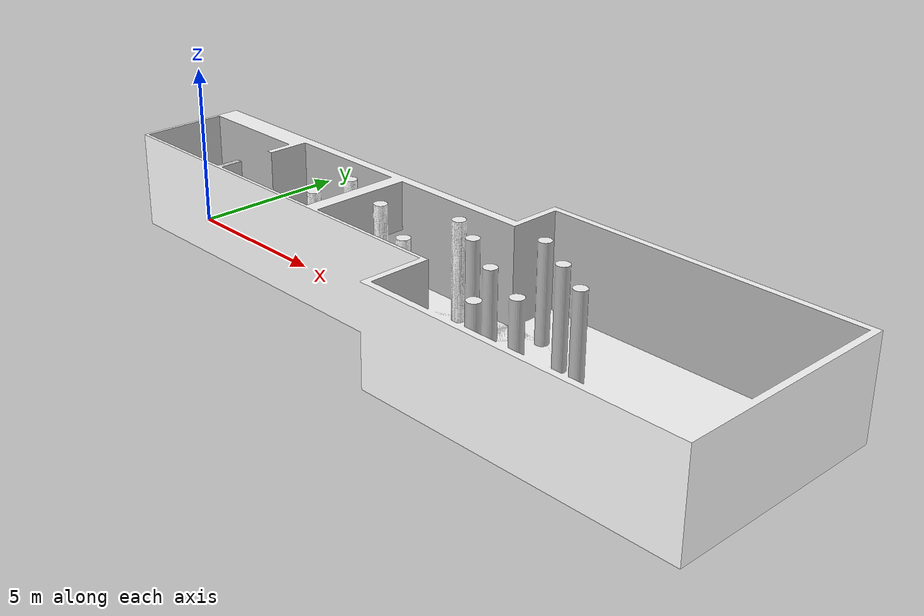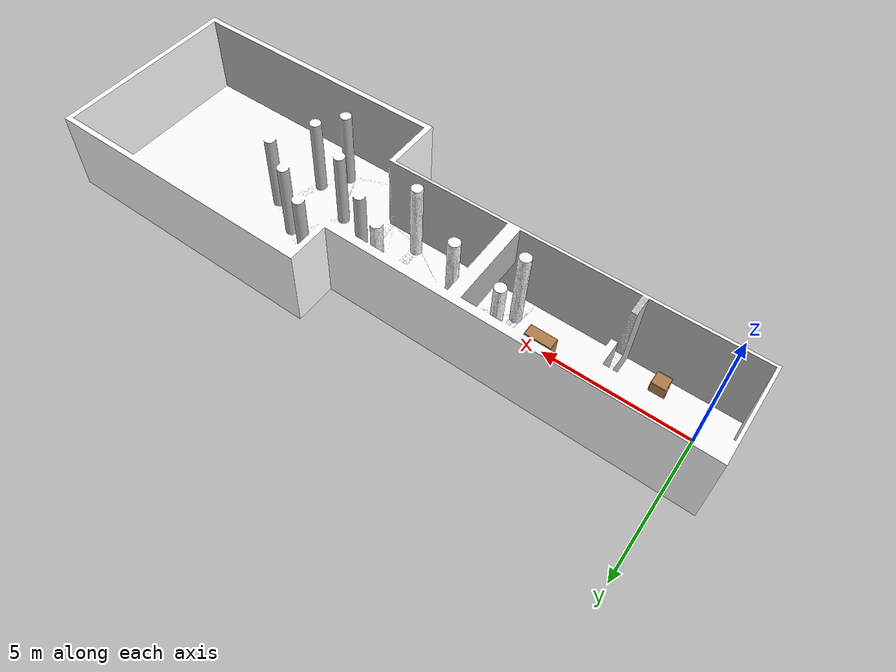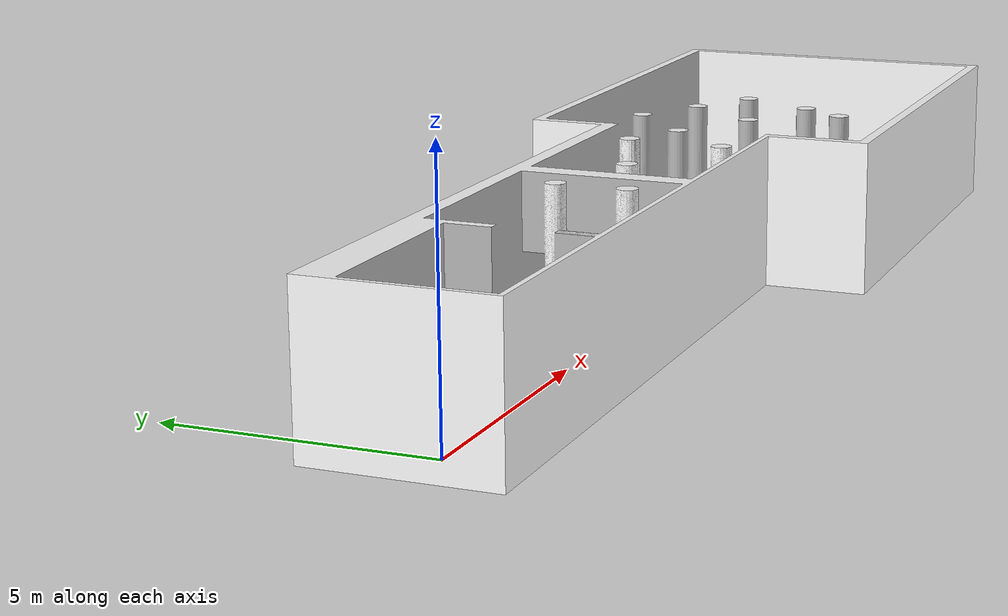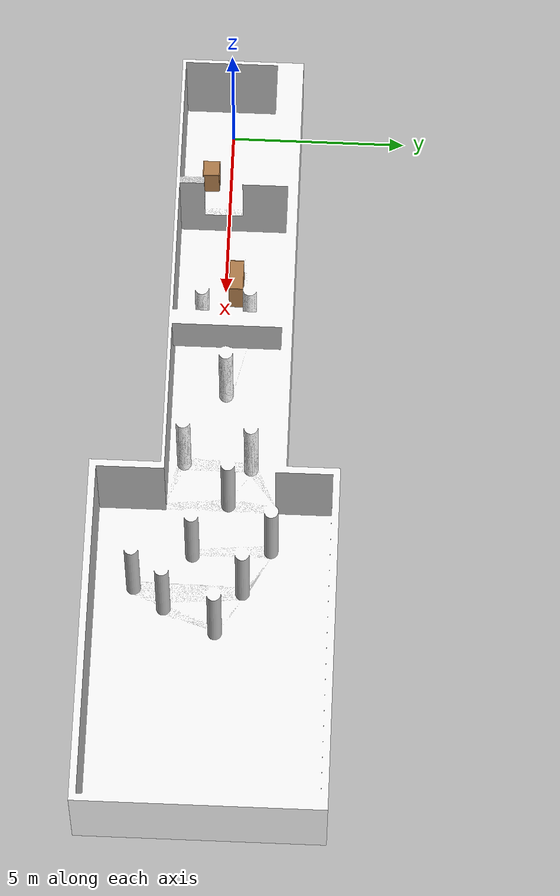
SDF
<sdf version="1.4">
 <world name="world">
  <model name="ground_plane">
   <static>1</static>
   <link name="link">
    <collision name="collision">
     <geometry><plane><normal>0 0 1</normal><size>100 100</size></plane></geometry>
     <surface><friction><ode><mu>100</mu><mu2>50</mu2></ode></friction></surface>
    </collision>
    <velocity_decay><linear>0</linear><angular>0</angular></velocity_decay>
   </link>
  </model>
  <model name="collision4">
   <static>1</static>
   <link name="body">
    <visual name="visual">
     <pose>-1 -1.5 -0.01 0 -0 0</pose>
     <geometry><mesh><uri>model://collision4/collision4.dae</uri></mesh></geometry>
    </visual>
    <collision name="collision">
     <pose>-1 -1.5 -0.01 0 -0 0</pose>
     <geometry><mesh><uri>model://collision4/collision4.dae</uri></mesh></geometry>
    </collision>
    <velocity_decay><linear>0</linear><angular>0</angular></velocity_decay>
   </link>
  </model>
  <light name="sun1" type="directional">
   <pose>1 0 3 0 -0 0</pose>
   <diffuse>0.8 0.8 0.8 1</diffuse>
   <specular>0.2 0.2 0.2 1</specular>
   <attenuation>
    <range>20</range>
    <constant>0.9</constant>
    <linear>0.01</linear>
    <quadratic>0.001</quadratic>
   </attenuation>
   <direction>-0 0 -1</direction>
  </light>
  <light name="sun2" type="point">
   <pose>0 0 5 0 -0 0</pose>
   <diffuse>0.8 0.8 0.8 1</diffuse>
   <specular>0.2 0.2 0.2 1</specular>
   <attenuation>
    <range>10</range>
    <constant>0.9</constant>
    <linear>0.01</linear>
    <quadratic>0.001</quadratic>
   </attenuation>
   <direction>-0 0 -1</direction>
  </light>
  <physics type="ode">
   <max_step_size>0.001</max_step_size>
   <real_time_factor>1</real_time_factor>
   <real_time_update_rate>1000</real_time_update_rate>
   <gravity>0 0 -9.8</gravity>
  </physics>
  <scene><ambient>0.4 0.4 0.4 1</ambient><background>0.7 0.7 0.7 1</background><shadows>1</shadows></scene>
  <spherical_coordinates>
   <surface_model>EARTH_WGS84</surface_model>
   <latitude_deg>0</latitude_deg>
   <longitude_deg>0</longitude_deg>
   <elevation>0</elevation>
   <heading_deg>0</heading_deg>
  </spherical_coordinates>
  <model name="cabinet">
   <static>1</static>
   <link name="cabinet_bottom_plate">
    <inertial>
     <pose>0 0 -1 0 -0 0</pose>
     <inertia><ixx>2.05</ixx><ixy>0</ixy><ixz>0</ixz><iyy>2.05</iyy><iyz>0</iyz><izz>2.05</izz></inertia>
     <mass>25</mass>
    </inertial>
    <collision name="cabinet_bottom_plate_geom">
     <pose>0 0 0.01 0 -0 0</pose>
     <geometry><box><size>0.45 0.45 0.02</size></box></geometry>
    </collision>
    <visual name="cabinet_bottom_plate_geom_visual">
     <pose>0 0 0.01 0 -0 0</pose>
     <geometry><box><size>0.45 0.45 0.02</size></box></geometry>
     <material>
      <script><uri>file://media/materials/scripts/gazebo.material</uri><name>Gazebo/Wood</name></script>
     </material>
    </visual>
    <collision name="cabinet_bottom_plate_geom_cabinet_back_plate">
     <pose>0.235 0 0.51 0 -0 0</pose>
     <geometry><box><size>0.02 0.45 1.02</size></box></geometry>
    </collision>
    <visual name="cabinet_bottom_plate_geom_cabinet_back_plate_visual">
     <pose>0.235 0 0.51 0 -0 0</pose>
     <geometry><box><size>0.02 0.45 1.02</size></box></geometry>
     <material>
      <script><uri>file://media/materials/scripts/gazebo.material</uri><name>Gazebo/Wood</name></script>
     </material>
    </visual>
    <collision name="cabinet_bottom_plate_geom_cabinet_left_plate">
     <pose>0 0.235 0.51 0 -0 0</pose>
     <geometry><box><size>0.45 0.02 1.02</size></box></geometry>
    </collision>
    <visual name="cabinet_bottom_plate_geom_cabinet_left_plate_visual">
     <pose>0 0.235 0.51 0 -0 0</pose>
     <geometry><box><size>0.45 0.02 1.02</size></box></geometry>
     <material>
      <script><uri>file://media/materials/scripts/gazebo.material</uri><name>Gazebo/Wood</name></script>
     </material>
    </visual>
    <collision name="cabinet_bottom_plate_geom_cabinet_middle_plate">
     <pose>0 0 0.51 0 -0 0</pose>
     <geometry><box><size>0.45 0.45 0.02</size></box></geometry>
    </collision>
    <visual name="cabinet_bottom_plate_geom_cabinet_middle_plate_visual">
     <pose>0 0 0.51 0 -0 0</pose>
     <geometry><box><size>0.45 0.45 0.02</size></box></geometry>
     <material>
      <script><uri>file://media/materials/scripts/gazebo.material</uri><name>Gazebo/Wood</name></script>
     </material>
    </visual>
    <collision name="cabinet_bottom_plate_geom_cabinet_right_plate">
     <pose>0 -0.235 0.51 0 -0 0</pose>
     <geometry><box><size>0.45 0.02 1.02</size></box></geometry>
    </collision>
    <visual name="cabinet_bottom_plate_geom_cabinet_right_plate_visual">
     <pose>0 -0.235 0.51 0 -0 0</pose>
     <geometry><box><size>0.45 0.02 1.02</size></box></geometry>
     <material>
      <script><uri>file://media/materials/scripts/gazebo.material</uri><name>Gazebo/Wood</name></script>
     </material>
    </visual>
    <collision name="cabinet_bottom_plate_geom_cabinet_top_plate">
     <pose>0 0 1.01 0 -0 0</pose>
     <geometry><box><size>0.45 0.45 0.02</size></box></geometry>
    </collision>
    <visual name="cabinet_bottom_plate_geom_cabinet_top_plate_visual">
     <pose>0 0 1.01 0 -0 0</pose>
     <geometry><box><size>0.45 0.45 0.02</size></box></geometry>
     <material>
      <script><uri>file://media/materials/scripts/gazebo.material</uri><name>Gazebo/Wood</name></script>
     </material>
    </visual>
    <velocity_decay><linear>0</linear><angular>0</angular></velocity_decay>
   </link>
   <pose>1.49811 -0.578333 0 0 -0 0</pose>
  </model>
  <model name="bookshelf">
   <static>1</static>
   <link name="link">
    <inertial><mass>1</mass></inertial>
    <collision name="back">
     <pose>0 0.005 0.6 0 -0 0</pose>
     <geometry><box><size>0.9 0.01 1.2</size></box></geometry>
    </collision>
    <visual name="visual1">
     <pose>0 0.005 0.6 0 -0 0</pose>
     <geometry><box><size>0.9 0.01 1.2</size></box></geometry>
     <material>
      <script><uri>file://media/materials/scripts/gazebo.material</uri><name>Gazebo/Wood</name></script>
     </material>
    </visual>
    <collision name="left_side">
     <pose>0.45 -0.195 0.6 0 -0 0</pose>
     <geometry><box><size>0.02 0.4 1.2</size></box></geometry>
    </collision>
    <visual name="visual2">
     <pose>0.45 -0.195 0.6 0 -0 0</pose>
     <geometry><box><size>0.02 0.4 1.2</size></box></geometry>
     <material>
      <script><uri>file://media/materials/scripts/gazebo.material</uri><name>Gazebo/Wood</name></script>
     </material>
    </visual>
    <collision name="right_side">
     <pose>-0.45 -0.195 0.6 0 -0 0</pose>
     <geometry><box><size>0.02 0.4 1.2</size></box></geometry>
    </collision>
    <visual name="visual3">
     <pose>-0.45 -0.195 0.6 0 -0 0</pose>
     <geometry><box><size>0.02 0.4 1.2</size></box></geometry>
     <material>
      <script><uri>file://media/materials/scripts/gazebo.material</uri><name>Gazebo/Wood</name></script>
     </material>
    </visual>
    <collision name="bottom">
     <pose>0 -0.195 0.03 0 -0 0</pose>
     <geometry><box><size>0.88 0.4 0.06</size></box></geometry>
    </collision>
    <visual name="visual4">
     <pose>0 -0.195 0.03 0 -0 0</pose>
     <geometry><box><size>0.88 0.4 0.06</size></box></geometry>
     <material>
      <script><uri>file://media/materials/scripts/gazebo.material</uri><name>Gazebo/Wood</name></script>
     </material>
    </visual>
    <collision name="top">
     <pose>0 -0.195 1.19 0 -0 0</pose>
     <geometry><box><size>0.88 0.4 0.02</size></box></geometry>
    </collision>
    <visual name="visual5">
     <pose>0 -0.195 1.19 0 -0 0</pose>
     <geometry><box><size>0.88 0.4 0.02</size></box></geometry>
     <material>
      <script><uri>file://media/materials/scripts/gazebo.material</uri><name>Gazebo/Wood</name></script>
     </material>
    </visual>
    <collision name="low_shelf">
     <pose>0 -0.195 0.43 0 -0 0</pose>
     <geometry><box><size>0.88 0.4 0.02</size></box></geometry>
    </collision>
    <visual name="visual6">
     <pose>0 -0.195 0.43 0 -0 0</pose>
     <geometry><box><size>0.88 0.4 0.02</size></box></geometry>
     <material>
      <script><uri>file://media/materials/scripts/gazebo.material</uri><name>Gazebo/Wood</name></script>
     </material>
    </visual>
    <collision name="high_shelf">
     <pose>0 -0.195 0.8 0 -0 0</pose>
     <geometry><box><size>0.88 0.4 0.02</size></box></geometry>
    </collision>
    <visual name="visual7">
     <pose>0 -0.195 0.8 0 -0 0</pose>
     <geometry><box><size>0.88 0.4 0.02</size></box></geometry>
     <material>
      <script><uri>file://media/materials/scripts/gazebo.material</uri><name>Gazebo/Wood</name></script>
     </material>
    </visual>
    <velocity_decay><linear>0</linear><angular>0</angular></velocity_decay>
   </link>
   <pose>5 0.499709 0 0 -0 0</pose>
  </model>
 </world>
</sdf>
